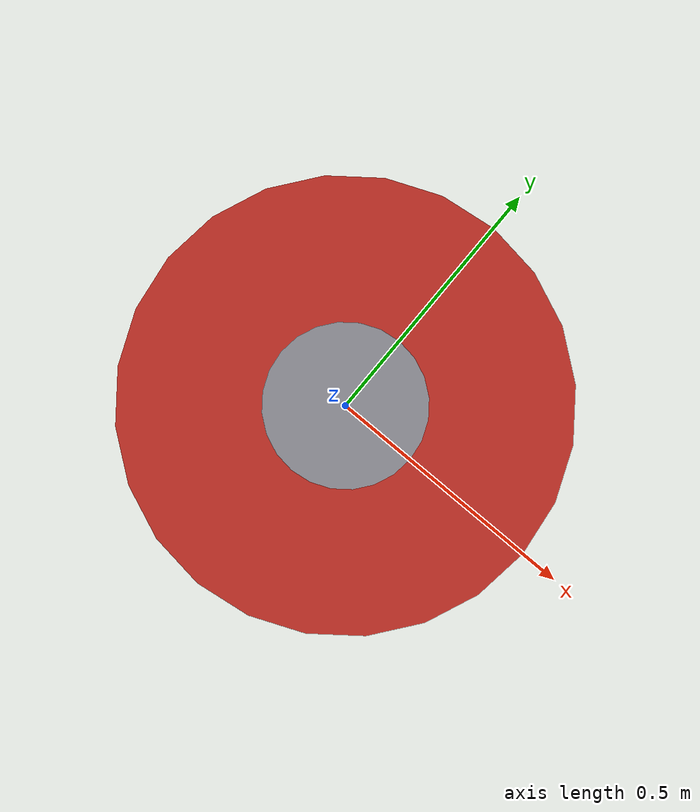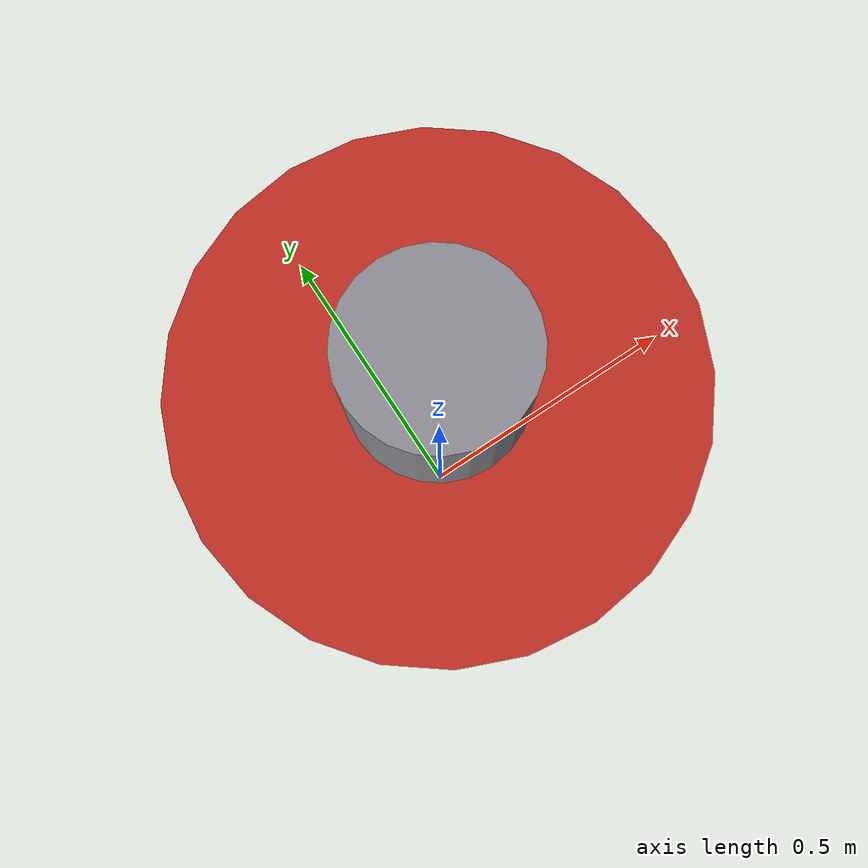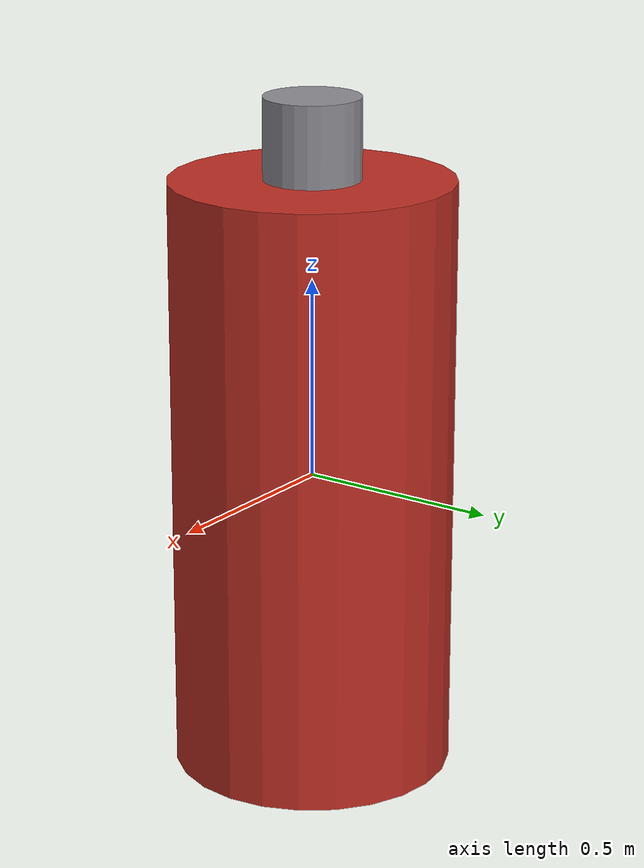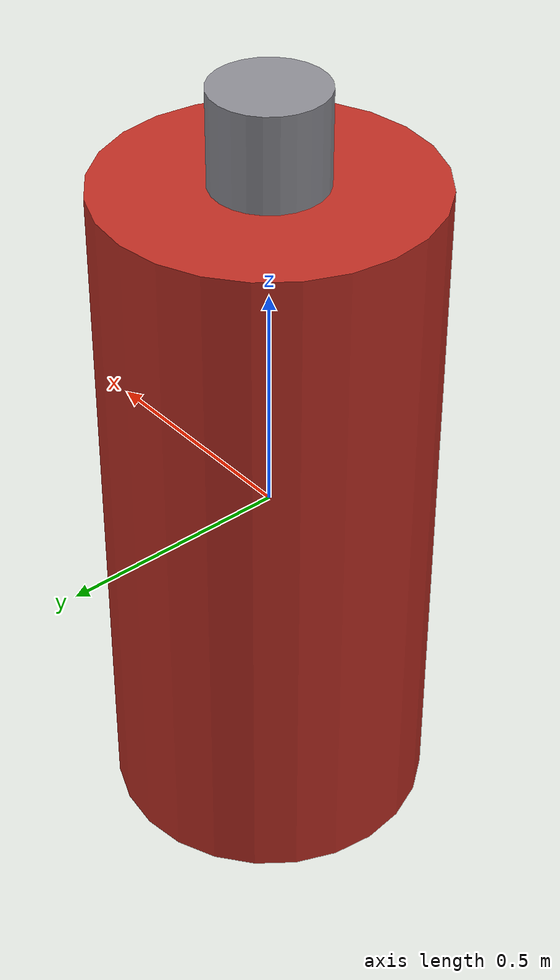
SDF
<?xml version="1.0"?>
<sdf version="1.10">
  <model name="gas_tank">
    <static>true</static>
    <link name="tank">
      <collision name="collision">
        <geometry><cylinder><radius>0.35</radius><length>1.5</length></cylinder></geometry>
      </collision>
      <visual name="visual">
        <geometry><cylinder><radius>0.35</radius><length>1.5</length></cylinder></geometry>
        <material>
          <ambient>0.55 0.12 0.1 1</ambient>
          <diffuse>0.75 0.18 0.14 1</diffuse>
        </material>
      </visual>
    </link>
    <link name="cap">
      <pose>0 0 0.85 0 0 0</pose>
      <visual name="visual">
        <geometry><cylinder><radius>0.12</radius><length>0.2</length></cylinder></geometry>
        <material>
          <ambient>0.4 0.4 0.42 1</ambient>
          <diffuse>0.55 0.55 0.58 1</diffuse>
        </material>
      </visual>
    </link>
  </model>
</sdf>
